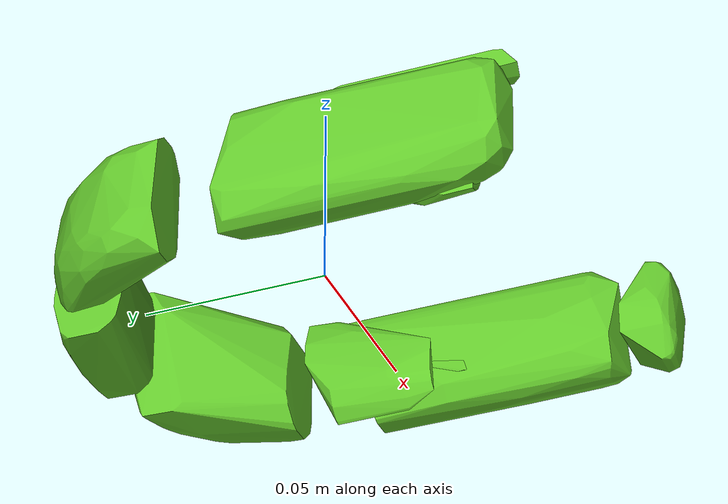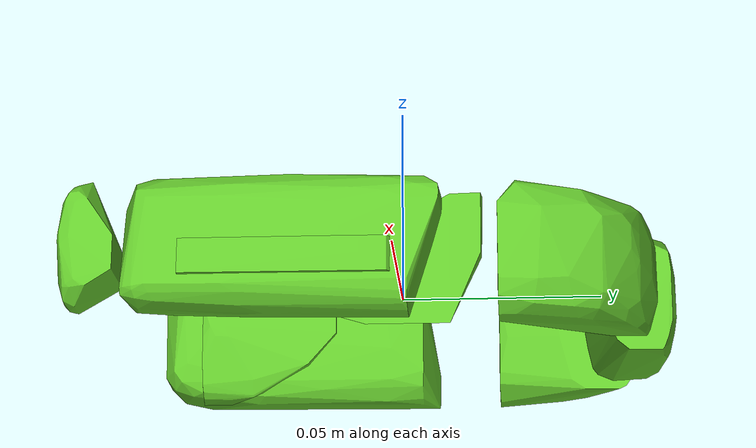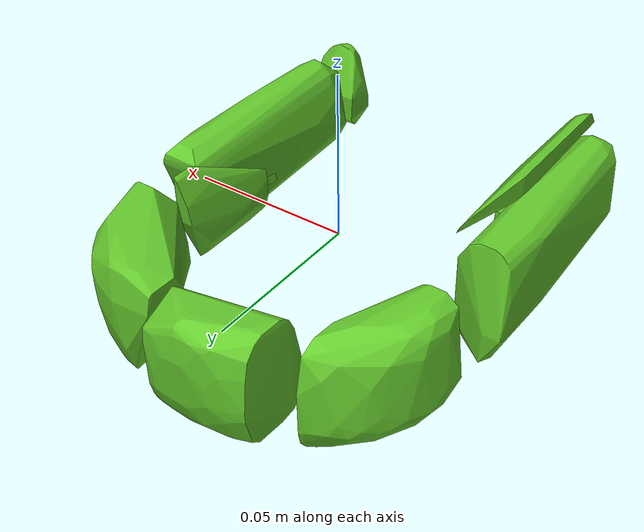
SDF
<?xml version='1.0' encoding='UTF-8'?>
<!-- This SDF was autogenerated by obj_to_drake_sdf.py -->
<sdf version="1.7">
  <model name="U_shape_texture">
    <link name="U_shape_texture">
      <inertial>
        <pose>0 0 0 0 0 0</pose>
        <mass>0.05</mass>
        <inertia>
          <ixx>0.00010922808</ixx>
          <iyy>0.00010334756</iyy>
          <izz>0.00019645388</izz>
          <ixy>5.5681284e-07</ixy>
          <ixz>1.9646745e-06</ixz>
          <iyz>1.2924363e-06</iyz>
        </inertia>
      </inertial>
      <visual name="convex_0">
        <pose>0 0 0 0 0 0</pose>
        <geometry>
          <mesh>
            <uri>U_shape_texture_convex_0.obj</uri>
          </mesh>
        </geometry>
        <material>
          <diffuse>0.39215686274509803 0.7843137254901961 0.17254901960784313 1</diffuse>
        </material>
      </visual>
      <collision name="convex_0_volume">
        <pose>0 0 0 0 0 0</pose>
        <geometry>
          <mesh>
            <uri>U_shape_texture_convex_0.obj</uri>
          </mesh>
        </geometry>
        <drake:proximity_properties xmlns:drake="uri:drake">
          <drake:compliant_hydroelastic/>
          <drake:hydroelastic_modulus> 3.0e7 </drake:hydroelastic_modulus>
          <drake:mesh_resolution_hint> 0.02 </drake:mesh_resolution_hint>
          <drake:hunt_crossley_dissipation>10</drake:hunt_crossley_dissipation>
          <drake:mu_dynamic>0.3</drake:mu_dynamic>
        </drake:proximity_properties>
      </collision>
      <visual name="convex_1">
        <pose>0 0 0 0 0 0</pose>
        <geometry>
          <mesh>
            <uri>U_shape_texture_convex_1.obj</uri>
          </mesh>
        </geometry>
        <material>
          <diffuse>0.39215686274509803 0.7843137254901961 0.17254901960784313 1</diffuse>
        </material>
      </visual>
      <collision name="convex_1_volume">
        <pose>0 0 0 0 0 0</pose>
        <geometry>
          <mesh>
            <uri>U_shape_texture_convex_1.obj</uri>
          </mesh>
        </geometry>
        <drake:proximity_properties xmlns:drake="uri:drake">
          <drake:compliant_hydroelastic/>
          <drake:hydroelastic_modulus> 3.0e7 </drake:hydroelastic_modulus>
          <drake:mesh_resolution_hint> 0.02 </drake:mesh_resolution_hint>
          <drake:hunt_crossley_dissipation>10</drake:hunt_crossley_dissipation>
          <drake:mu_dynamic>0.3</drake:mu_dynamic>
        </drake:proximity_properties>
      </collision>
      <visual name="convex_2">
        <pose>0 0 0 0 0 0</pose>
        <geometry>
          <mesh>
            <uri>U_shape_texture_convex_2.obj</uri>
          </mesh>
        </geometry>
        <material>
          <diffuse>0.39215686274509803 0.7843137254901961 0.17254901960784313 1</diffuse>
        </material>
      </visual>
      <collision name="convex_2_volume">
        <pose>0 0 0 0 0 0</pose>
        <geometry>
          <mesh>
            <uri>U_shape_texture_convex_2.obj</uri>
          </mesh>
        </geometry>
        <drake:proximity_properties xmlns:drake="uri:drake">
          <drake:compliant_hydroelastic/>
          <drake:hydroelastic_modulus> 3.0e7 </drake:hydroelastic_modulus>
          <drake:mesh_resolution_hint> 0.02 </drake:mesh_resolution_hint>
          <drake:hunt_crossley_dissipation>10</drake:hunt_crossley_dissipation>
          <drake:mu_dynamic>0.3</drake:mu_dynamic>
        </drake:proximity_properties>
      </collision>
      <visual name="convex_3">
        <pose>0 0 0 0 0 0</pose>
        <geometry>
          <mesh>
            <uri>U_shape_texture_convex_3.obj</uri>
          </mesh>
        </geometry>
        <material>
          <diffuse>0.39215686274509803 0.7843137254901961 0.17254901960784313 1</diffuse>
        </material>
      </visual>
      <collision name="convex_3_volume">
        <pose>0 0 0 0 0 0</pose>
        <geometry>
          <mesh>
            <uri>U_shape_texture_convex_3.obj</uri>
          </mesh>
        </geometry>
        <drake:proximity_properties xmlns:drake="uri:drake">
          <drake:compliant_hydroelastic/>
          <drake:hydroelastic_modulus> 3.0e7 </drake:hydroelastic_modulus>
          <drake:mesh_resolution_hint> 0.02 </drake:mesh_resolution_hint>
          <drake:hunt_crossley_dissipation>10</drake:hunt_crossley_dissipation>
          <drake:mu_dynamic>0.3</drake:mu_dynamic>
        </drake:proximity_properties>
      </collision>
      <visual name="convex_4">
        <pose>0 0 0 0 0 0</pose>
        <geometry>
          <mesh>
            <uri>U_shape_texture_convex_4.obj</uri>
          </mesh>
        </geometry>
        <material>
          <diffuse>0.39215686274509803 0.7843137254901961 0.17254901960784313 1</diffuse>
        </material>
      </visual>
      <collision name="convex_4_volume">
        <pose>0 0 0 0 0 0</pose>
        <geometry>
          <mesh>
            <uri>U_shape_texture_convex_4.obj</uri>
          </mesh>
        </geometry>
        <drake:proximity_properties xmlns:drake="uri:drake">
          <drake:compliant_hydroelastic/>
          <drake:hydroelastic_modulus> 3.0e7 </drake:hydroelastic_modulus>
          <drake:mesh_resolution_hint> 0.02 </drake:mesh_resolution_hint>
          <drake:hunt_crossley_dissipation>10</drake:hunt_crossley_dissipation>
          <drake:mu_dynamic>0.3</drake:mu_dynamic>
        </drake:proximity_properties>
      </collision>
      <visual name="convex_5">
        <pose>0 0 0 0 0 0</pose>
        <geometry>
          <mesh>
            <uri>U_shape_texture_convex_5.obj</uri>
          </mesh>
        </geometry>
        <material>
          <diffuse>0.39215686274509803 0.7843137254901961 0.17254901960784313 1</diffuse>
        </material>
      </visual>
      <collision name="convex_5_volume">
        <pose>0 0 0 0 0 0</pose>
        <geometry>
          <mesh>
            <uri>U_shape_texture_convex_5.obj</uri>
          </mesh>
        </geometry>
        <drake:proximity_properties xmlns:drake="uri:drake">
          <drake:compliant_hydroelastic/>
          <drake:hydroelastic_modulus> 3.0e7 </drake:hydroelastic_modulus>
          <drake:mesh_resolution_hint> 0.02 </drake:mesh_resolution_hint>
          <drake:hunt_crossley_dissipation>10</drake:hunt_crossley_dissipation>
          <drake:mu_dynamic>0.3</drake:mu_dynamic>
        </drake:proximity_properties>
      </collision>
      <visual name="convex_6">
        <pose>0 0 0 0 0 0</pose>
        <geometry>
          <mesh>
            <uri>U_shape_texture_convex_6.obj</uri>
          </mesh>
        </geometry>
        <material>
          <diffuse>0.39215686274509803 0.7843137254901961 0.17254901960784313 1</diffuse>
        </material>
      </visual>
      <collision name="convex_6_volume">
        <pose>0 0 0 0 0 0</pose>
        <geometry>
          <mesh>
            <uri>U_shape_texture_convex_6.obj</uri>
          </mesh>
        </geometry>
        <drake:proximity_properties xmlns:drake="uri:drake">
          <drake:compliant_hydroelastic/>
          <drake:hydroelastic_modulus> 3.0e7 </drake:hydroelastic_modulus>
          <drake:mesh_resolution_hint> 0.02 </drake:mesh_resolution_hint>
          <drake:hunt_crossley_dissipation>10</drake:hunt_crossley_dissipation>
          <drake:mu_dynamic>0.3</drake:mu_dynamic>
        </drake:proximity_properties>
      </collision>
      <visual name="convex_7">
        <pose>0 0 0 0 0 0</pose>
        <geometry>
          <mesh>
            <uri>U_shape_texture_convex_7.obj</uri>
          </mesh>
        </geometry>
        <material>
          <diffuse>0.39215686274509803 0.7843137254901961 0.17254901960784313 1</diffuse>
        </material>
      </visual>
      <collision name="convex_7_volume">
        <pose>0 0 0 0 0 0</pose>
        <geometry>
          <mesh>
            <uri>U_shape_texture_convex_7.obj</uri>
          </mesh>
        </geometry>
        <drake:proximity_properties xmlns:drake="uri:drake">
          <drake:compliant_hydroelastic/>
          <drake:hydroelastic_modulus> 3.0e7 </drake:hydroelastic_modulus>
          <drake:mesh_resolution_hint> 0.02 </drake:mesh_resolution_hint>
          <drake:hunt_crossley_dissipation>10</drake:hunt_crossley_dissipation>
          <drake:mu_dynamic>0.3</drake:mu_dynamic>
        </drake:proximity_properties>
      </collision>
      <visual name="convex_8">
        <pose>0 0 0 0 0 0</pose>
        <geometry>
          <mesh>
            <uri>U_shape_texture_convex_8.obj</uri>
          </mesh>
        </geometry>
        <material>
          <diffuse>0.39215686274509803 0.7843137254901961 0.17254901960784313 1</diffuse>
        </material>
      </visual>
      <collision name="convex_8_volume">
        <pose>0 0 0 0 0 0</pose>
        <geometry>
          <mesh>
            <uri>U_shape_texture_convex_8.obj</uri>
          </mesh>
        </geometry>
        <drake:proximity_properties xmlns:drake="uri:drake">
          <drake:compliant_hydroelastic/>
          <drake:hydroelastic_modulus> 3.0e7 </drake:hydroelastic_modulus>
          <drake:mesh_resolution_hint> 0.02 </drake:mesh_resolution_hint>
          <drake:hunt_crossley_dissipation>10</drake:hunt_crossley_dissipation>
          <drake:mu_dynamic>0.3</drake:mu_dynamic>
        </drake:proximity_properties>
      </collision>
      <visual name="convex_9">
        <pose>0 0 0 0 0 0</pose>
        <geometry>
          <mesh>
            <uri>U_shape_texture_convex_9.obj</uri>
          </mesh>
        </geometry>
        <material>
          <diffuse>0.39215686274509803 0.7843137254901961 0.17254901960784313 1</diffuse>
        </material>
      </visual>
      <collision name="convex_9_volume">
        <pose>0 0 0 0 0 0</pose>
        <geometry>
          <mesh>
            <uri>U_shape_texture_convex_9.obj</uri>
          </mesh>
        </geometry>
        <drake:proximity_properties xmlns:drake="uri:drake">
          <drake:compliant_hydroelastic/>
          <drake:hydroelastic_modulus> 3.0e7 </drake:hydroelastic_modulus>
          <drake:mesh_resolution_hint> 0.02 </drake:mesh_resolution_hint>
          <drake:hunt_crossley_dissipation>10</drake:hunt_crossley_dissipation>
          <drake:mu_dynamic>0.3</drake:mu_dynamic>
        </drake:proximity_properties>
      </collision>
    </link>
  </model>
</sdf>
